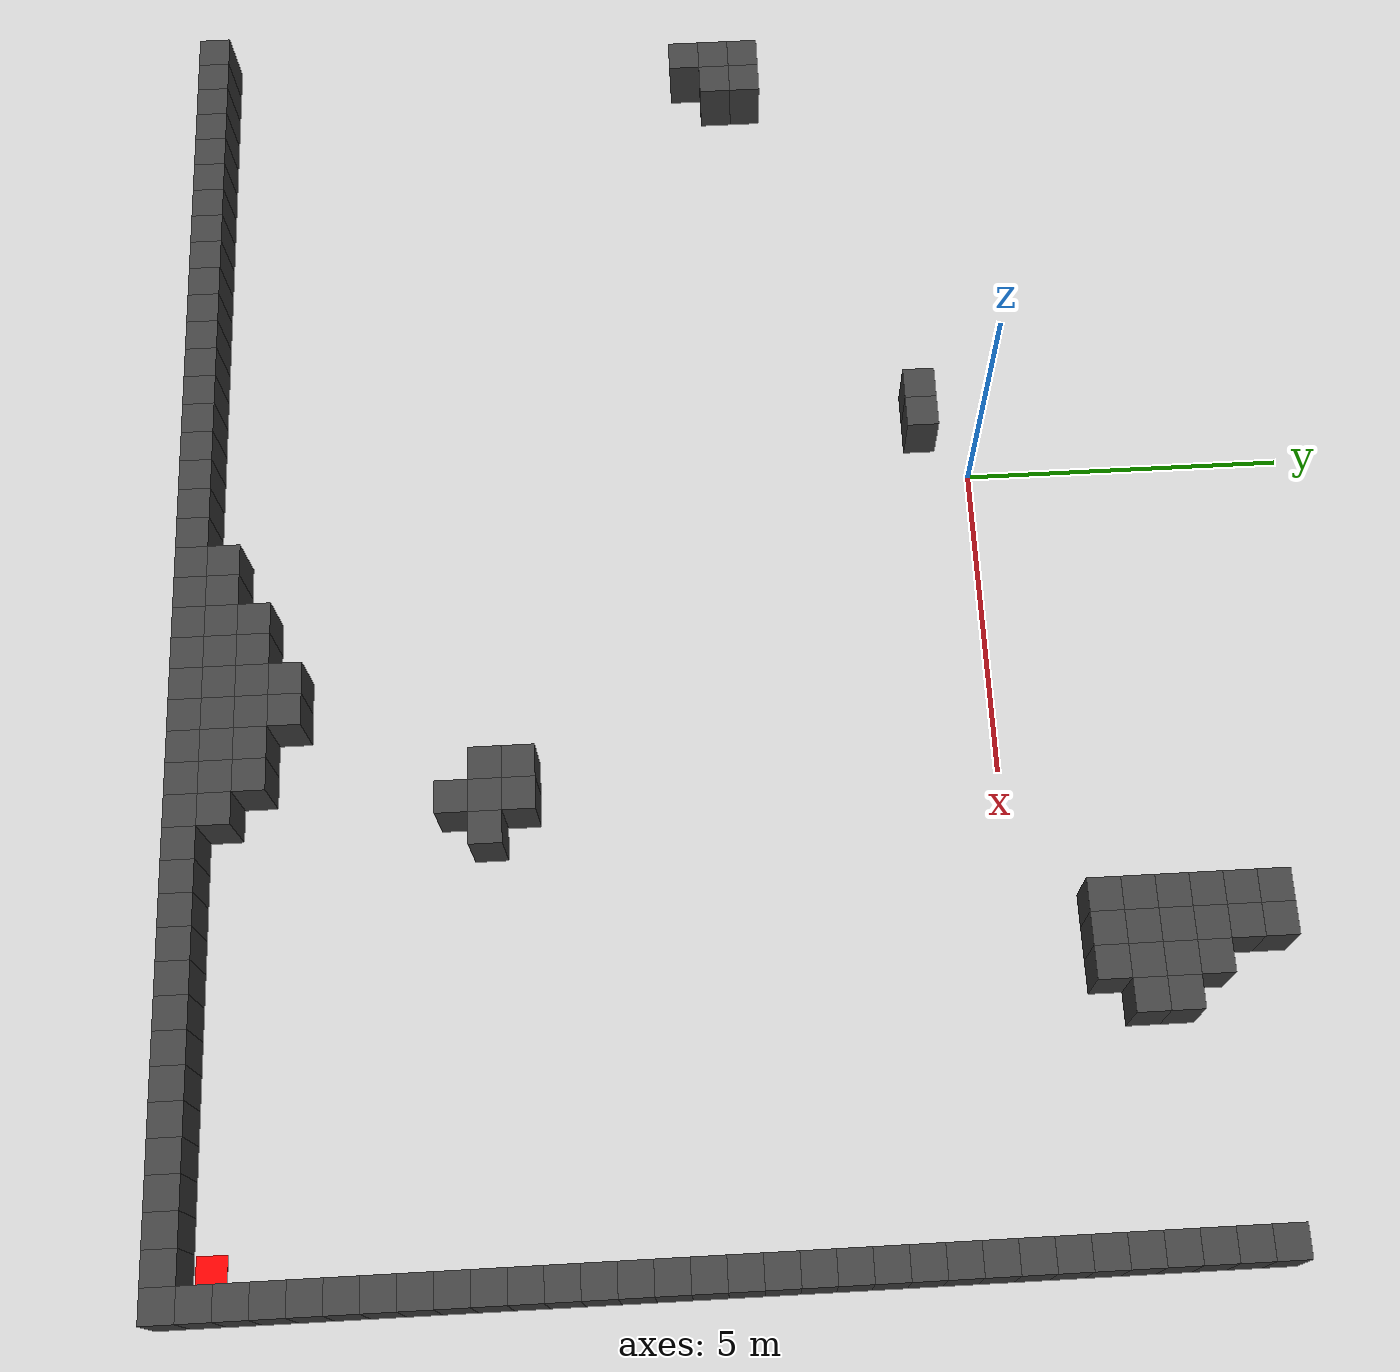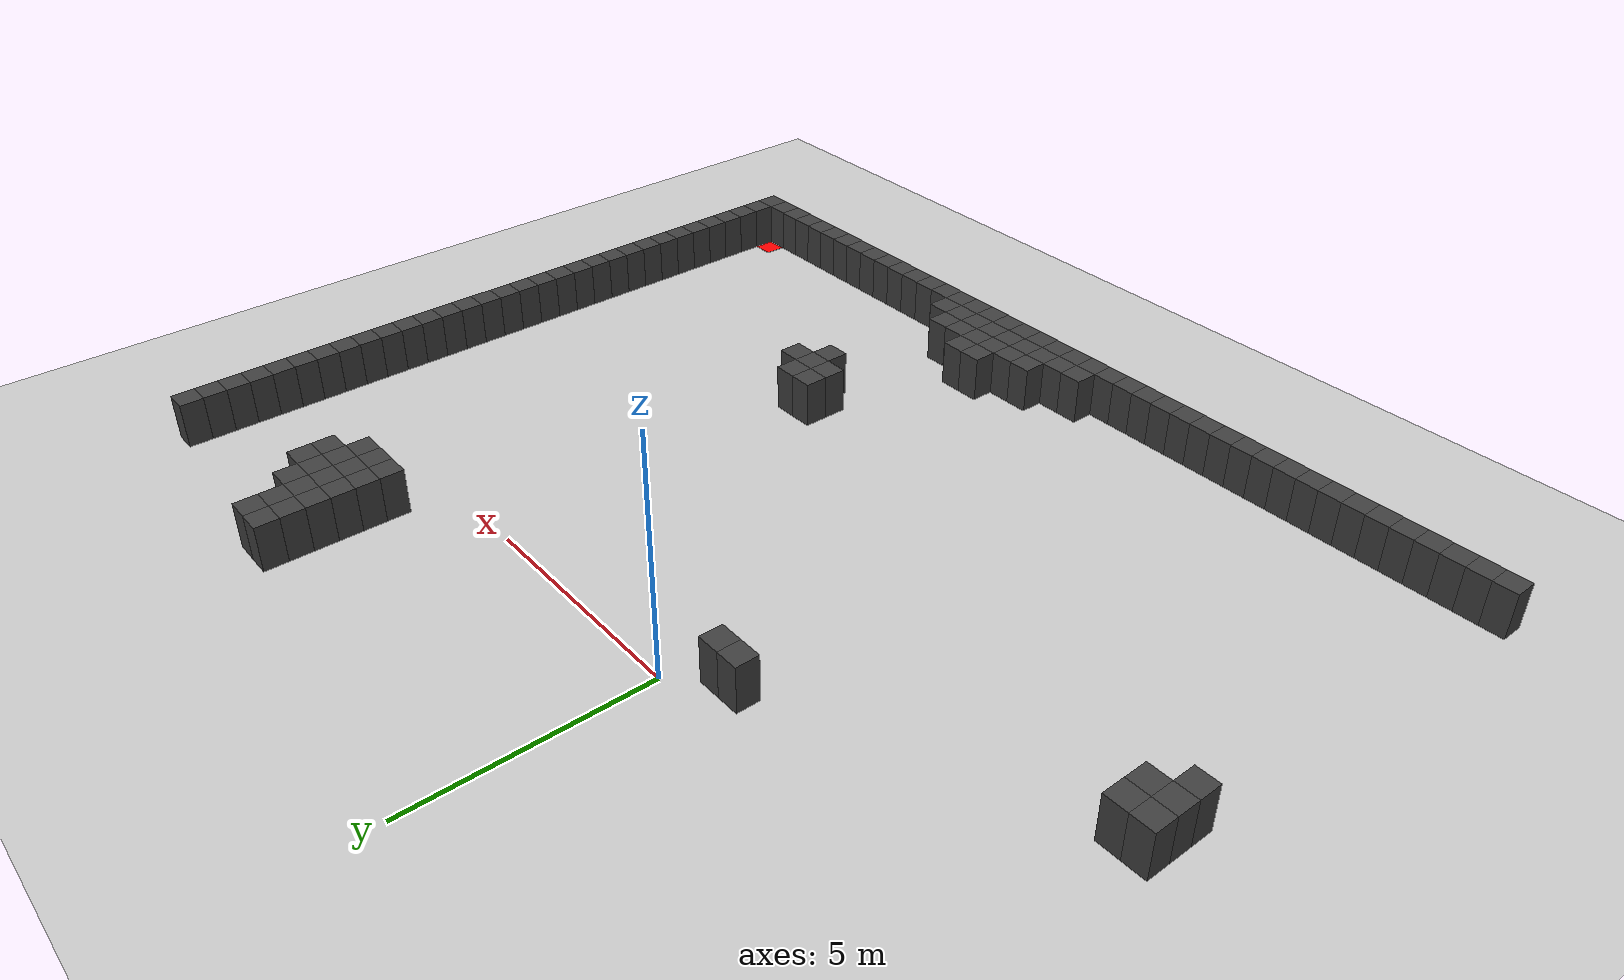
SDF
<sdf version="1.7">
 <world name="map_5009">
  <model name="ground_plane">
   <static>true</static>
   <link name="link">
    <collision name="collision">
     <geometry><plane><normal>0 0 1</normal><size>200 200</size></plane></geometry>
    </collision>
    <visual name="visual">
     <geometry><plane><normal>0 0 1</normal><size>200 200</size></plane></geometry>
     <material><ambient>0.8 0.8 0.8 1</ambient><diffuse>0.8 0.8 0.8 1</diffuse></material>
    </visual>
   </link>
  </model>
  <model name="maze_environment">
   <static>true</static>
   <link name="wall_167">
    <pose>7.250 3.750 0.500 0 0 0</pose>
    <collision name="col"><geometry><box><size>0.5 0.5 1.0</size></box></geometry></collision>
    <visual name="vis">
     <geometry><box><size>0.5 0.5 1.0</size></box></geometry>
     <material><ambient>0.15 0.15 0.15 1</ambient><diffuse>0.25 0.25 0.25 1</diffuse></material>
    </visual>
   </link>
   <link name="wall_168">
    <pose>7.750 3.750 0.500 0 0 0</pose>
    <collision name="col"><geometry><box><size>0.5 0.5 1.0</size></box></geometry></collision>
    <visual name="vis">
     <geometry><box><size>0.5 0.5 1.0</size></box></geometry>
     <material><ambient>0.15 0.15 0.15 1</ambient><diffuse>0.25 0.25 0.25 1</diffuse></material>
    </visual>
   </link>
   <link name="wall_175">
    <pose>7.250 3.250 0.500 0 0 0</pose>
    <collision name="col"><geometry><box><size>0.5 0.5 1.0</size></box></geometry></collision>
    <visual name="vis">
     <geometry><box><size>0.5 0.5 1.0</size></box></geometry>
     <material><ambient>0.15 0.15 0.15 1</ambient><diffuse>0.25 0.25 0.25 1</diffuse></material>
    </visual>
   </link>
   <link name="wall_176">
    <pose>7.750 3.250 0.500 0 0 0</pose>
    <collision name="col"><geometry><box><size>0.5 0.5 1.0</size></box></geometry></collision>
    <visual name="vis">
     <geometry><box><size>0.5 0.5 1.0</size></box></geometry>
     <material><ambient>0.15 0.15 0.15 1</ambient><diffuse>0.25 0.25 0.25 1</diffuse></material>
    </visual>
   </link>
   <link name="wall_177">
    <pose>12.250 3.250 0.500 0 0 0</pose>
    <collision name="col"><geometry><box><size>0.5 0.5 1.0</size></box></geometry></collision>
    <visual name="vis">
     <geometry><box><size>0.5 0.5 1.0</size></box></geometry>
     <material><ambient>0.15 0.15 0.15 1</ambient><diffuse>0.25 0.25 0.25 1</diffuse></material>
    </visual>
   </link>
   <link name="wall_183">
    <pose>7.250 2.750 0.500 0 0 0</pose>
    <collision name="col"><geometry><box><size>0.5 0.5 1.0</size></box></geometry></collision>
    <visual name="vis">
     <geometry><box><size>0.5 0.5 1.0</size></box></geometry>
     <material><ambient>0.15 0.15 0.15 1</ambient><diffuse>0.25 0.25 0.25 1</diffuse></material>
    </visual>
   </link>
   <link name="wall_184">
    <pose>7.750 2.750 0.500 0 0 0</pose>
    <collision name="col"><geometry><box><size>0.5 0.5 1.0</size></box></geometry></collision>
    <visual name="vis">
     <geometry><box><size>0.5 0.5 1.0</size></box></geometry>
     <material><ambient>0.15 0.15 0.15 1</ambient><diffuse>0.25 0.25 0.25 1</diffuse></material>
    </visual>
   </link>
   <link name="wall_185">
    <pose>8.250 2.750 0.500 0 0 0</pose>
    <collision name="col"><geometry><box><size>0.5 0.5 1.0</size></box></geometry></collision>
    <visual name="vis">
     <geometry><box><size>0.5 0.5 1.0</size></box></geometry>
     <material><ambient>0.15 0.15 0.15 1</ambient><diffuse>0.25 0.25 0.25 1</diffuse></material>
    </visual>
   </link>
   <link name="wall_186">
    <pose>12.250 2.750 0.500 0 0 0</pose>
    <collision name="col"><geometry><box><size>0.5 0.5 1.0</size></box></geometry></collision>
    <visual name="vis">
     <geometry><box><size>0.5 0.5 1.0</size></box></geometry>
     <material><ambient>0.15 0.15 0.15 1</ambient><diffuse>0.25 0.25 0.25 1</diffuse></material>
    </visual>
   </link>
   <link name="wall_192">
    <pose>7.250 2.250 0.500 0 0 0</pose>
    <collision name="col"><geometry><box><size>0.5 0.5 1.0</size></box></geometry></collision>
    <visual name="vis">
     <geometry><box><size>0.5 0.5 1.0</size></box></geometry>
     <material><ambient>0.15 0.15 0.15 1</ambient><diffuse>0.25 0.25 0.25 1</diffuse></material>
    </visual>
   </link>
   <link name="wall_193">
    <pose>7.750 2.250 0.500 0 0 0</pose>
    <collision name="col"><geometry><box><size>0.5 0.5 1.0</size></box></geometry></collision>
    <visual name="vis">
     <geometry><box><size>0.5 0.5 1.0</size></box></geometry>
     <material><ambient>0.15 0.15 0.15 1</ambient><diffuse>0.25 0.25 0.25 1</diffuse></material>
    </visual>
   </link>
   <link name="wall_194">
    <pose>8.250 2.250 0.500 0 0 0</pose>
    <collision name="col"><geometry><box><size>0.5 0.5 1.0</size></box></geometry></collision>
    <visual name="vis">
     <geometry><box><size>0.5 0.5 1.0</size></box></geometry>
     <material><ambient>0.15 0.15 0.15 1</ambient><diffuse>0.25 0.25 0.25 1</diffuse></material>
    </visual>
   </link>
   <link name="wall_195">
    <pose>8.750 2.250 0.500 0 0 0</pose>
    <collision name="col"><geometry><box><size>0.5 0.5 1.0</size></box></geometry></collision>
    <visual name="vis">
     <geometry><box><size>0.5 0.5 1.0</size></box></geometry>
     <material><ambient>0.15 0.15 0.15 1</ambient><diffuse>0.25 0.25 0.25 1</diffuse></material>
    </visual>
   </link>
   <link name="wall_196">
    <pose>12.250 2.250 0.500 0 0 0</pose>
    <collision name="col"><geometry><box><size>0.5 0.5 1.0</size></box></geometry></collision>
    <visual name="vis">
     <geometry><box><size>0.5 0.5 1.0</size></box></geometry>
     <material><ambient>0.15 0.15 0.15 1</ambient><diffuse>0.25 0.25 0.25 1</diffuse></material>
    </visual>
   </link>
   <link name="wall_201">
    <pose>7.250 1.750 0.500 0 0 0</pose>
    <collision name="col"><geometry><box><size>0.5 0.5 1.0</size></box></geometry></collision>
    <visual name="vis">
     <geometry><box><size>0.5 0.5 1.0</size></box></geometry>
     <material><ambient>0.15 0.15 0.15 1</ambient><diffuse>0.25 0.25 0.25 1</diffuse></material>
    </visual>
   </link>
   <link name="wall_202">
    <pose>7.750 1.750 0.500 0 0 0</pose>
    <collision name="col"><geometry><box><size>0.5 0.5 1.0</size></box></geometry></collision>
    <visual name="vis">
     <geometry><box><size>0.5 0.5 1.0</size></box></geometry>
     <material><ambient>0.15 0.15 0.15 1</ambient><diffuse>0.25 0.25 0.25 1</diffuse></material>
    </visual>
   </link>
   <link name="wall_203">
    <pose>8.250 1.750 0.500 0 0 0</pose>
    <collision name="col"><geometry><box><size>0.5 0.5 1.0</size></box></geometry></collision>
    <visual name="vis">
     <geometry><box><size>0.5 0.5 1.0</size></box></geometry>
     <material><ambient>0.15 0.15 0.15 1</ambient><diffuse>0.25 0.25 0.25 1</diffuse></material>
    </visual>
   </link>
   <link name="wall_204">
    <pose>8.750 1.750 0.500 0 0 0</pose>
    <collision name="col"><geometry><box><size>0.5 0.5 1.0</size></box></geometry></collision>
    <visual name="vis">
     <geometry><box><size>0.5 0.5 1.0</size></box></geometry>
     <material><ambient>0.15 0.15 0.15 1</ambient><diffuse>0.25 0.25 0.25 1</diffuse></material>
    </visual>
   </link>
   <link name="wall_205">
    <pose>12.250 1.750 0.500 0 0 0</pose>
    <collision name="col"><geometry><box><size>0.5 0.5 1.0</size></box></geometry></collision>
    <visual name="vis">
     <geometry><box><size>0.5 0.5 1.0</size></box></geometry>
     <material><ambient>0.15 0.15 0.15 1</ambient><diffuse>0.25 0.25 0.25 1</diffuse></material>
    </visual>
   </link>
   <link name="wall_208">
    <pose>7.250 1.250 0.500 0 0 0</pose>
    <collision name="col"><geometry><box><size>0.5 0.5 1.0</size></box></geometry></collision>
    <visual name="vis">
     <geometry><box><size>0.5 0.5 1.0</size></box></geometry>
     <material><ambient>0.15 0.15 0.15 1</ambient><diffuse>0.25 0.25 0.25 1</diffuse></material>
    </visual>
   </link>
   <link name="wall_209">
    <pose>7.750 1.250 0.500 0 0 0</pose>
    <collision name="col"><geometry><box><size>0.5 0.5 1.0</size></box></geometry></collision>
    <visual name="vis">
     <geometry><box><size>0.5 0.5 1.0</size></box></geometry>
     <material><ambient>0.15 0.15 0.15 1</ambient><diffuse>0.25 0.25 0.25 1</diffuse></material>
    </visual>
   </link>
   <link name="wall_210">
    <pose>8.250 1.250 0.500 0 0 0</pose>
    <collision name="col"><geometry><box><size>0.5 0.5 1.0</size></box></geometry></collision>
    <visual name="vis">
     <geometry><box><size>0.5 0.5 1.0</size></box></geometry>
     <material><ambient>0.15 0.15 0.15 1</ambient><diffuse>0.25 0.25 0.25 1</diffuse></material>
    </visual>
   </link>
   <link name="wall_211">
    <pose>12.250 1.250 0.500 0 0 0</pose>
    <collision name="col"><geometry><box><size>0.5 0.5 1.0</size></box></geometry></collision>
    <visual name="vis">
     <geometry><box><size>0.5 0.5 1.0</size></box></geometry>
     <material><ambient>0.15 0.15 0.15 1</ambient><diffuse>0.25 0.25 0.25 1</diffuse></material>
    </visual>
   </link>
   <link name="wall_213">
    <pose>12.250 0.750 0.500 0 0 0</pose>
    <collision name="col"><geometry><box><size>0.5 0.5 1.0</size></box></geometry></collision>
    <visual name="vis">
     <geometry><box><size>0.5 0.5 1.0</size></box></geometry>
     <material><ambient>0.15 0.15 0.15 1</ambient><diffuse>0.25 0.25 0.25 1</diffuse></material>
    </visual>
   </link>
   <link name="wall_216">
    <pose>12.250 0.250 0.500 0 0 0</pose>
    <collision name="col"><geometry><box><size>0.5 0.5 1.0</size></box></geometry></collision>
    <visual name="vis">
     <geometry><box><size>0.5 0.5 1.0</size></box></geometry>
     <material><ambient>0.15 0.15 0.15 1</ambient><diffuse>0.25 0.25 0.25 1</diffuse></material>
    </visual>
   </link>
   <link name="wall_220">
    <pose>12.250 -0.250 0.500 0 0 0</pose>
    <collision name="col"><geometry><box><size>0.5 0.5 1.0</size></box></geometry></collision>
    <visual name="vis">
     <geometry><box><size>0.5 0.5 1.0</size></box></geometry>
     <material><ambient>0.15 0.15 0.15 1</ambient><diffuse>0.25 0.25 0.25 1</diffuse></material>
    </visual>
   </link>
   <link name="wall_224">
    <pose>-1.250 -0.750 0.500 0 0 0</pose>
    <collision name="col"><geometry><box><size>0.5 0.5 1.0</size></box></geometry></collision>
    <visual name="vis">
     <geometry><box><size>0.5 0.5 1.0</size></box></geometry>
     <material><ambient>0.15 0.15 0.15 1</ambient><diffuse>0.25 0.25 0.25 1</diffuse></material>
    </visual>
   </link>
   <link name="wall_225">
    <pose>-0.750 -0.750 0.500 0 0 0</pose>
    <collision name="col"><geometry><box><size>0.5 0.5 1.0</size></box></geometry></collision>
    <visual name="vis">
     <geometry><box><size>0.5 0.5 1.0</size></box></geometry>
     <material><ambient>0.15 0.15 0.15 1</ambient><diffuse>0.25 0.25 0.25 1</diffuse></material>
    </visual>
   </link>
   <link name="wall_226">
    <pose>12.250 -0.750 0.500 0 0 0</pose>
    <collision name="col"><geometry><box><size>0.5 0.5 1.0</size></box></geometry></collision>
    <visual name="vis">
     <geometry><box><size>0.5 0.5 1.0</size></box></geometry>
     <material><ambient>0.15 0.15 0.15 1</ambient><diffuse>0.25 0.25 0.25 1</diffuse></material>
    </visual>
   </link>
   <link name="wall_230">
    <pose>12.250 -1.250 0.500 0 0 0</pose>
    <collision name="col"><geometry><box><size>0.5 0.5 1.0</size></box></geometry></collision>
    <visual name="vis">
     <geometry><box><size>0.5 0.5 1.0</size></box></geometry>
     <material><ambient>0.15 0.15 0.15 1</ambient><diffuse>0.25 0.25 0.25 1</diffuse></material>
    </visual>
   </link>
   <link name="wall_233">
    <pose>12.250 -1.750 0.500 0 0 0</pose>
    <collision name="col"><geometry><box><size>0.5 0.5 1.0</size></box></geometry></collision>
    <visual name="vis">
     <geometry><box><size>0.5 0.5 1.0</size></box></geometry>
     <material><ambient>0.15 0.15 0.15 1</ambient><diffuse>0.25 0.25 0.25 1</diffuse></material>
    </visual>
   </link>
   <link name="wall_235">
    <pose>12.250 -2.250 0.500 0 0 0</pose>
    <collision name="col"><geometry><box><size>0.5 0.5 1.0</size></box></geometry></collision>
    <visual name="vis">
     <geometry><box><size>0.5 0.5 1.0</size></box></geometry>
     <material><ambient>0.15 0.15 0.15 1</ambient><diffuse>0.25 0.25 0.25 1</diffuse></material>
    </visual>
   </link>
   <link name="wall_238">
    <pose>12.250 -2.750 0.500 0 0 0</pose>
    <collision name="col"><geometry><box><size>0.5 0.5 1.0</size></box></geometry></collision>
    <visual name="vis">
     <geometry><box><size>0.5 0.5 1.0</size></box></geometry>
     <material><ambient>0.15 0.15 0.15 1</ambient><diffuse>0.25 0.25 0.25 1</diffuse></material>
    </visual>
   </link>
   <link name="wall_243">
    <pose>-7.750 -3.250 0.500 0 0 0</pose>
    <collision name="col"><geometry><box><size>0.5 0.5 1.0</size></box></geometry></collision>
    <visual name="vis">
     <geometry><box><size>0.5 0.5 1.0</size></box></geometry>
     <material><ambient>0.15 0.15 0.15 1</ambient><diffuse>0.25 0.25 0.25 1</diffuse></material>
    </visual>
   </link>
   <link name="wall_244">
    <pose>-7.250 -3.250 0.500 0 0 0</pose>
    <collision name="col"><geometry><box><size>0.5 0.5 1.0</size></box></geometry></collision>
    <visual name="vis">
     <geometry><box><size>0.5 0.5 1.0</size></box></geometry>
     <material><ambient>0.15 0.15 0.15 1</ambient><diffuse>0.25 0.25 0.25 1</diffuse></material>
    </visual>
   </link>
   <link name="wall_245">
    <pose>12.250 -3.250 0.500 0 0 0</pose>
    <collision name="col"><geometry><box><size>0.5 0.5 1.0</size></box></geometry></collision>
    <visual name="vis">
     <geometry><box><size>0.5 0.5 1.0</size></box></geometry>
     <material><ambient>0.15 0.15 0.15 1</ambient><diffuse>0.25 0.25 0.25 1</diffuse></material>
    </visual>
   </link>
   <link name="wall_249">
    <pose>-7.750 -3.750 0.500 0 0 0</pose>
    <collision name="col"><geometry><box><size>0.5 0.5 1.0</size></box></geometry></collision>
    <visual name="vis">
     <geometry><box><size>0.5 0.5 1.0</size></box></geometry>
     <material><ambient>0.15 0.15 0.15 1</ambient><diffuse>0.25 0.25 0.25 1</diffuse></material>
    </visual>
   </link>
   <link name="wall_250">
    <pose>-7.250 -3.750 0.500 0 0 0</pose>
    <collision name="col"><geometry><box><size>0.5 0.5 1.0</size></box></geometry></collision>
    <visual name="vis">
     <geometry><box><size>0.5 0.5 1.0</size></box></geometry>
     <material><ambient>0.15 0.15 0.15 1</ambient><diffuse>0.25 0.25 0.25 1</diffuse></material>
    </visual>
   </link>
   <link name="wall_251">
    <pose>12.250 -3.750 0.500 0 0 0</pose>
    <collision name="col"><geometry><box><size>0.5 0.5 1.0</size></box></geometry></collision>
    <visual name="vis">
     <geometry><box><size>0.5 0.5 1.0</size></box></geometry>
     <material><ambient>0.15 0.15 0.15 1</ambient><diffuse>0.25 0.25 0.25 1</diffuse></material>
    </visual>
   </link>
   <link name="wall_254">
    <pose>-7.750 -4.250 0.500 0 0 0</pose>
    <collision name="col"><geometry><box><size>0.5 0.5 1.0</size></box></geometry></collision>
    <visual name="vis">
     <geometry><box><size>0.5 0.5 1.0</size></box></geometry>
     <material><ambient>0.15 0.15 0.15 1</ambient><diffuse>0.25 0.25 0.25 1</diffuse></material>
    </visual>
   </link>
   <link name="wall_255">
    <pose>12.250 -4.250 0.500 0 0 0</pose>
    <collision name="col"><geometry><box><size>0.5 0.5 1.0</size></box></geometry></collision>
    <visual name="vis">
     <geometry><box><size>0.5 0.5 1.0</size></box></geometry>
     <material><ambient>0.15 0.15 0.15 1</ambient><diffuse>0.25 0.25 0.25 1</diffuse></material>
    </visual>
   </link>
   <link name="wall_257">
    <pose>12.250 -4.750 0.500 0 0 0</pose>
    <collision name="col"><geometry><box><size>0.5 0.5 1.0</size></box></geometry></collision>
    <visual name="vis">
     <geometry><box><size>0.5 0.5 1.0</size></box></geometry>
     <material><ambient>0.15 0.15 0.15 1</ambient><diffuse>0.25 0.25 0.25 1</diffuse></material>
    </visual>
   </link>
   <link name="wall_260">
    <pose>12.250 -5.250 0.500 0 0 0</pose>
    <collision name="col"><geometry><box><size>0.5 0.5 1.0</size></box></geometry></collision>
    <visual name="vis">
     <geometry><box><size>0.5 0.5 1.0</size></box></geometry>
     <material><ambient>0.15 0.15 0.15 1</ambient><diffuse>0.25 0.25 0.25 1</diffuse></material>
    </visual>
   </link>
   <link name="wall_263">
    <pose>12.250 -5.750 0.500 0 0 0</pose>
    <collision name="col"><geometry><box><size>0.5 0.5 1.0</size></box></geometry></collision>
    <visual name="vis">
     <geometry><box><size>0.5 0.5 1.0</size></box></geometry>
     <material><ambient>0.15 0.15 0.15 1</ambient><diffuse>0.25 0.25 0.25 1</diffuse></material>
    </visual>
   </link>
   <link name="wall_266">
    <pose>12.250 -6.250 0.500 0 0 0</pose>
    <collision name="col"><geometry><box><size>0.5 0.5 1.0</size></box></geometry></collision>
    <visual name="vis">
     <geometry><box><size>0.5 0.5 1.0</size></box></geometry>
     <material><ambient>0.15 0.15 0.15 1</ambient><diffuse>0.25 0.25 0.25 1</diffuse></material>
    </visual>
   </link>
   <link name="wall_268">
    <pose>12.250 -6.750 0.500 0 0 0</pose>
    <collision name="col"><geometry><box><size>0.5 0.5 1.0</size></box></geometry></collision>
    <visual name="vis">
     <geometry><box><size>0.5 0.5 1.0</size></box></geometry>
     <material><ambient>0.15 0.15 0.15 1</ambient><diffuse>0.25 0.25 0.25 1</diffuse></material>
    </visual>
   </link>
   <link name="wall_270">
    <pose>4.750 -7.250 0.500 0 0 0</pose>
    <collision name="col"><geometry><box><size>0.5 0.5 1.0</size></box></geometry></collision>
    <visual name="vis">
     <geometry><box><size>0.5 0.5 1.0</size></box></geometry>
     <material><ambient>0.15 0.15 0.15 1</ambient><diffuse>0.25 0.25 0.25 1</diffuse></material>
    </visual>
   </link>
   <link name="wall_271">
    <pose>5.250 -7.250 0.500 0 0 0</pose>
    <collision name="col"><geometry><box><size>0.5 0.5 1.0</size></box></geometry></collision>
    <visual name="vis">
     <geometry><box><size>0.5 0.5 1.0</size></box></geometry>
     <material><ambient>0.15 0.15 0.15 1</ambient><diffuse>0.25 0.25 0.25 1</diffuse></material>
    </visual>
   </link>
   <link name="wall_272">
    <pose>12.250 -7.250 0.500 0 0 0</pose>
    <collision name="col"><geometry><box><size>0.5 0.5 1.0</size></box></geometry></collision>
    <visual name="vis">
     <geometry><box><size>0.5 0.5 1.0</size></box></geometry>
     <material><ambient>0.15 0.15 0.15 1</ambient><diffuse>0.25 0.25 0.25 1</diffuse></material>
    </visual>
   </link>
   <link name="wall_274">
    <pose>4.750 -7.750 0.500 0 0 0</pose>
    <collision name="col"><geometry><box><size>0.5 0.5 1.0</size></box></geometry></collision>
    <visual name="vis">
     <geometry><box><size>0.5 0.5 1.0</size></box></geometry>
     <material><ambient>0.15 0.15 0.15 1</ambient><diffuse>0.25 0.25 0.25 1</diffuse></material>
    </visual>
   </link>
   <link name="wall_275">
    <pose>5.250 -7.750 0.500 0 0 0</pose>
    <collision name="col"><geometry><box><size>0.5 0.5 1.0</size></box></geometry></collision>
    <visual name="vis">
     <geometry><box><size>0.5 0.5 1.0</size></box></geometry>
     <material><ambient>0.15 0.15 0.15 1</ambient><diffuse>0.25 0.25 0.25 1</diffuse></material>
    </visual>
   </link>
   <link name="wall_276">
    <pose>5.750 -7.750 0.500 0 0 0</pose>
    <collision name="col"><geometry><box><size>0.5 0.5 1.0</size></box></geometry></collision>
    <visual name="vis">
     <geometry><box><size>0.5 0.5 1.0</size></box></geometry>
     <material><ambient>0.15 0.15 0.15 1</ambient><diffuse>0.25 0.25 0.25 1</diffuse></material>
    </visual>
   </link>
   <link name="wall_277">
    <pose>12.250 -7.750 0.500 0 0 0</pose>
    <collision name="col"><geometry><box><size>0.5 0.5 1.0</size></box></geometry></collision>
    <visual name="vis">
     <geometry><box><size>0.5 0.5 1.0</size></box></geometry>
     <material><ambient>0.15 0.15 0.15 1</ambient><diffuse>0.25 0.25 0.25 1</diffuse></material>
    </visual>
   </link>
   <link name="wall_279">
    <pose>5.250 -8.250 0.500 0 0 0</pose>
    <collision name="col"><geometry><box><size>0.5 0.5 1.0</size></box></geometry></collision>
    <visual name="vis">
     <geometry><box><size>0.5 0.5 1.0</size></box></geometry>
     <material><ambient>0.15 0.15 0.15 1</ambient><diffuse>0.25 0.25 0.25 1</diffuse></material>
    </visual>
   </link>
   <link name="wall_280">
    <pose>12.250 -8.250 0.500 0 0 0</pose>
    <collision name="col"><geometry><box><size>0.5 0.5 1.0</size></box></geometry></collision>
    <visual name="vis">
     <geometry><box><size>0.5 0.5 1.0</size></box></geometry>
     <material><ambient>0.15 0.15 0.15 1</ambient><diffuse>0.25 0.25 0.25 1</diffuse></material>
    </visual>
   </link>
   <link name="wall_282">
    <pose>12.250 -8.750 0.500 0 0 0</pose>
    <collision name="col"><geometry><box><size>0.5 0.5 1.0</size></box></geometry></collision>
    <visual name="vis">
     <geometry><box><size>0.5 0.5 1.0</size></box></geometry>
     <material><ambient>0.15 0.15 0.15 1</ambient><diffuse>0.25 0.25 0.25 1</diffuse></material>
    </visual>
   </link>
   <link name="wall_284">
    <pose>12.250 -9.250 0.500 0 0 0</pose>
    <collision name="col"><geometry><box><size>0.5 0.5 1.0</size></box></geometry></collision>
    <visual name="vis">
     <geometry><box><size>0.5 0.5 1.0</size></box></geometry>
     <material><ambient>0.15 0.15 0.15 1</ambient><diffuse>0.25 0.25 0.25 1</diffuse></material>
    </visual>
   </link>
   <link name="wall_286">
    <pose>12.250 -9.750 0.500 0 0 0</pose>
    <collision name="col"><geometry><box><size>0.5 0.5 1.0</size></box></geometry></collision>
    <visual name="vis">
     <geometry><box><size>0.5 0.5 1.0</size></box></geometry>
     <material><ambient>0.15 0.15 0.15 1</ambient><diffuse>0.25 0.25 0.25 1</diffuse></material>
    </visual>
   </link>
   <link name="wall_288">
    <pose>12.250 -10.250 0.500 0 0 0</pose>
    <collision name="col"><geometry><box><size>0.5 0.5 1.0</size></box></geometry></collision>
    <visual name="vis">
     <geometry><box><size>0.5 0.5 1.0</size></box></geometry>
     <material><ambient>0.15 0.15 0.15 1</ambient><diffuse>0.25 0.25 0.25 1</diffuse></material>
    </visual>
   </link>
   <link name="wall_290">
    <pose>3.250 -10.750 0.500 0 0 0</pose>
    <collision name="col"><geometry><box><size>0.5 0.5 1.0</size></box></geometry></collision>
    <visual name="vis">
     <geometry><box><size>0.5 0.5 1.0</size></box></geometry>
     <material><ambient>0.15 0.15 0.15 1</ambient><diffuse>0.25 0.25 0.25 1</diffuse></material>
    </visual>
   </link>
   <link name="wall_291">
    <pose>3.750 -10.750 0.500 0 0 0</pose>
    <collision name="col"><geometry><box><size>0.5 0.5 1.0</size></box></geometry></collision>
    <visual name="vis">
     <geometry><box><size>0.5 0.5 1.0</size></box></geometry>
     <material><ambient>0.15 0.15 0.15 1</ambient><diffuse>0.25 0.25 0.25 1</diffuse></material>
    </visual>
   </link>
   <link name="wall_292">
    <pose>12.250 -10.750 0.500 0 0 0</pose>
    <collision name="col"><geometry><box><size>0.5 0.5 1.0</size></box></geometry></collision>
    <visual name="vis">
     <geometry><box><size>0.5 0.5 1.0</size></box></geometry>
     <material><ambient>0.15 0.15 0.15 1</ambient><diffuse>0.25 0.25 0.25 1</diffuse></material>
    </visual>
   </link>
   <link name="wall_294">
    <pose>2.250 -11.250 0.500 0 0 0</pose>
    <collision name="col"><geometry><box><size>0.5 0.5 1.0</size></box></geometry></collision>
    <visual name="vis">
     <geometry><box><size>0.5 0.5 1.0</size></box></geometry>
     <material><ambient>0.15 0.15 0.15 1</ambient><diffuse>0.25 0.25 0.25 1</diffuse></material>
    </visual>
   </link>
   <link name="wall_295">
    <pose>2.750 -11.250 0.500 0 0 0</pose>
    <collision name="col"><geometry><box><size>0.5 0.5 1.0</size></box></geometry></collision>
    <visual name="vis">
     <geometry><box><size>0.5 0.5 1.0</size></box></geometry>
     <material><ambient>0.15 0.15 0.15 1</ambient><diffuse>0.25 0.25 0.25 1</diffuse></material>
    </visual>
   </link>
   <link name="wall_296">
    <pose>3.250 -11.250 0.500 0 0 0</pose>
    <collision name="col"><geometry><box><size>0.5 0.5 1.0</size></box></geometry></collision>
    <visual name="vis">
     <geometry><box><size>0.5 0.5 1.0</size></box></geometry>
     <material><ambient>0.15 0.15 0.15 1</ambient><diffuse>0.25 0.25 0.25 1</diffuse></material>
    </visual>
   </link>
   <link name="wall_297">
    <pose>3.750 -11.250 0.500 0 0 0</pose>
    <collision name="col"><geometry><box><size>0.5 0.5 1.0</size></box></geometry></collision>
    <visual name="vis">
     <geometry><box><size>0.5 0.5 1.0</size></box></geometry>
     <material><ambient>0.15 0.15 0.15 1</ambient><diffuse>0.25 0.25 0.25 1</diffuse></material>
    </visual>
   </link>
   <link name="wall_298">
    <pose>4.250 -11.250 0.500 0 0 0</pose>
    <collision name="col"><geometry><box><size>0.5 0.5 1.0</size></box></geometry></collision>
    <visual name="vis">
     <geometry><box><size>0.5 0.5 1.0</size></box></geometry>
     <material><ambient>0.15 0.15 0.15 1</ambient><diffuse>0.25 0.25 0.25 1</diffuse></material>
    </visual>
   </link>
   <link name="wall_299">
    <pose>4.750 -11.250 0.500 0 0 0</pose>
    <collision name="col"><geometry><box><size>0.5 0.5 1.0</size></box></geometry></collision>
    <visual name="vis">
     <geometry><box><size>0.5 0.5 1.0</size></box></geometry>
     <material><ambient>0.15 0.15 0.15 1</ambient><diffuse>0.25 0.25 0.25 1</diffuse></material>
    </visual>
   </link>
   <link name="wall_300">
    <pose>12.250 -11.250 0.500 0 0 0</pose>
    <collision name="col"><geometry><box><size>0.5 0.5 1.0</size></box></geometry></collision>
    <visual name="vis">
     <geometry><box><size>0.5 0.5 1.0</size></box></geometry>
     <material><ambient>0.15 0.15 0.15 1</ambient><diffuse>0.25 0.25 0.25 1</diffuse></material>
    </visual>
   </link>
   <link name="wall_304">
    <pose>1.250 -11.750 0.500 0 0 0</pose>
    <collision name="col"><geometry><box><size>0.5 0.5 1.0</size></box></geometry></collision>
    <visual name="vis">
     <geometry><box><size>0.5 0.5 1.0</size></box></geometry>
     <material><ambient>0.15 0.15 0.15 1</ambient><diffuse>0.25 0.25 0.25 1</diffuse></material>
    </visual>
   </link>
   <link name="wall_305">
    <pose>1.750 -11.750 0.500 0 0 0</pose>
    <collision name="col"><geometry><box><size>0.5 0.5 1.0</size></box></geometry></collision>
    <visual name="vis">
     <geometry><box><size>0.5 0.5 1.0</size></box></geometry>
     <material><ambient>0.15 0.15 0.15 1</ambient><diffuse>0.25 0.25 0.25 1</diffuse></material>
    </visual>
   </link>
   <link name="wall_306">
    <pose>2.250 -11.750 0.500 0 0 0</pose>
    <collision name="col"><geometry><box><size>0.5 0.5 1.0</size></box></geometry></collision>
    <visual name="vis">
     <geometry><box><size>0.5 0.5 1.0</size></box></geometry>
     <material><ambient>0.15 0.15 0.15 1</ambient><diffuse>0.25 0.25 0.25 1</diffuse></material>
    </visual>
   </link>
   <link name="wall_307">
    <pose>2.750 -11.750 0.500 0 0 0</pose>
    <collision name="col"><geometry><box><size>0.5 0.5 1.0</size></box></geometry></collision>
    <visual name="vis">
     <geometry><box><size>0.5 0.5 1.0</size></box></geometry>
     <material><ambient>0.15 0.15 0.15 1</ambient><diffuse>0.25 0.25 0.25 1</diffuse></material>
    </visual>
   </link>
   <link name="wall_308">
    <pose>3.250 -11.750 0.500 0 0 0</pose>
    <collision name="col"><geometry><box><size>0.5 0.5 1.0</size></box></geometry></collision>
    <visual name="vis">
     <geometry><box><size>0.5 0.5 1.0</size></box></geometry>
     <material><ambient>0.15 0.15 0.15 1</ambient><diffuse>0.25 0.25 0.25 1</diffuse></material>
    </visual>
   </link>
   <link name="wall_309">
    <pose>3.750 -11.750 0.500 0 0 0</pose>
    <collision name="col"><geometry><box><size>0.5 0.5 1.0</size></box></geometry></collision>
    <visual name="vis">
     <geometry><box><size>0.5 0.5 1.0</size></box></geometry>
     <material><ambient>0.15 0.15 0.15 1</ambient><diffuse>0.25 0.25 0.25 1</diffuse></material>
    </visual>
   </link>
   <link name="wall_310">
    <pose>4.250 -11.750 0.500 0 0 0</pose>
    <collision name="col"><geometry><box><size>0.5 0.5 1.0</size></box></geometry></collision>
    <visual name="vis">
     <geometry><box><size>0.5 0.5 1.0</size></box></geometry>
     <material><ambient>0.15 0.15 0.15 1</ambient><diffuse>0.25 0.25 0.25 1</diffuse></material>
    </visual>
   </link>
   <link name="wall_311">
    <pose>4.750 -11.750 0.500 0 0 0</pose>
    <collision name="col"><geometry><box><size>0.5 0.5 1.0</size></box></geometry></collision>
    <visual name="vis">
     <geometry><box><size>0.5 0.5 1.0</size></box></geometry>
     <material><ambient>0.15 0.15 0.15 1</ambient><diffuse>0.25 0.25 0.25 1</diffuse></material>
    </visual>
   </link>
   <link name="wall_312">
    <pose>5.250 -11.750 0.500 0 0 0</pose>
    <collision name="col"><geometry><box><size>0.5 0.5 1.0</size></box></geometry></collision>
    <visual name="vis">
     <geometry><box><size>0.5 0.5 1.0</size></box></geometry>
     <material><ambient>0.15 0.15 0.15 1</ambient><diffuse>0.25 0.25 0.25 1</diffuse></material>
    </visual>
   </link>
   <link name="wall_313">
    <pose>12.250 -11.750 0.500 0 0 0</pose>
    <collision name="col"><geometry><box><size>0.5 0.5 1.0</size></box></geometry></collision>
    <visual name="vis">
     <geometry><box><size>0.5 0.5 1.0</size></box></geometry>
     <material><ambient>0.15 0.15 0.15 1</ambient><diffuse>0.25 0.25 0.25 1</diffuse></material>
    </visual>
   </link>
   <link name="wall_322">
    <pose>-8.250 -12.250 0.500 0 0 0</pose>
    <collision name="col"><geometry><box><size>0.5 0.5 1.0</size></box></geometry></collision>
    <visual name="vis">
     <geometry><box><size>0.5 0.5 1.0</size></box></geometry>
     <material><ambient>0.15 0.15 0.15 1</ambient><diffuse>0.25 0.25 0.25 1</diffuse></material>
    </visual>
   </link>
   <link name="wall_323">
    <pose>-7.750 -12.250 0.500 0 0 0</pose>
    <collision name="col"><geometry><box><size>0.5 0.5 1.0</size></box></geometry></collision>
    <visual name="vis">
     <geometry><box><size>0.5 0.5 1.0</size></box></geometry>
     <material><ambient>0.15 0.15 0.15 1</ambient><diffuse>0.25 0.25 0.25 1</diffuse></material>
    </visual>
   </link>
   <link name="wall_324">
    <pose>-7.250 -12.250 0.500 0 0 0</pose>
    <collision name="col"><geometry><box><size>0.5 0.5 1.0</size></box></geometry></collision>
    <visual name="vis">
     <geometry><box><size>0.5 0.5 1.0</size></box></geometry>
     <material><ambient>0.15 0.15 0.15 1</ambient><diffuse>0.25 0.25 0.25 1</diffuse></material>
    </visual>
   </link>
   <link name="wall_325">
    <pose>-6.750 -12.250 0.500 0 0 0</pose>
    <collision name="col"><geometry><box><size>0.5 0.5 1.0</size></box></geometry></collision>
    <visual name="vis">
     <geometry><box><size>0.5 0.5 1.0</size></box></geometry>
     <material><ambient>0.15 0.15 0.15 1</ambient><diffuse>0.25 0.25 0.25 1</diffuse></material>
    </visual>
   </link>
   <link name="wall_326">
    <pose>-6.250 -12.250 0.500 0 0 0</pose>
    <collision name="col"><geometry><box><size>0.5 0.5 1.0</size></box></geometry></collision>
    <visual name="vis">
     <geometry><box><size>0.5 0.5 1.0</size></box></geometry>
     <material><ambient>0.15 0.15 0.15 1</ambient><diffuse>0.25 0.25 0.25 1</diffuse></material>
    </visual>
   </link>
   <link name="wall_327">
    <pose>-5.750 -12.250 0.500 0 0 0</pose>
    <collision name="col"><geometry><box><size>0.5 0.5 1.0</size></box></geometry></collision>
    <visual name="vis">
     <geometry><box><size>0.5 0.5 1.0</size></box></geometry>
     <material><ambient>0.15 0.15 0.15 1</ambient><diffuse>0.25 0.25 0.25 1</diffuse></material>
    </visual>
   </link>
   <link name="wall_328">
    <pose>-5.250 -12.250 0.500 0 0 0</pose>
    <collision name="col"><geometry><box><size>0.5 0.5 1.0</size></box></geometry></collision>
    <visual name="vis">
     <geometry><box><size>0.5 0.5 1.0</size></box></geometry>
     <material><ambient>0.15 0.15 0.15 1</ambient><diffuse>0.25 0.25 0.25 1</diffuse></material>
    </visual>
   </link>
   <link name="wall_329">
    <pose>-4.750 -12.250 0.500 0 0 0</pose>
    <collision name="col"><geometry><box><size>0.5 0.5 1.0</size></box></geometry></collision>
    <visual name="vis">
     <geometry><box><size>0.5 0.5 1.0</size></box></geometry>
     <material><ambient>0.15 0.15 0.15 1</ambient><diffuse>0.25 0.25 0.25 1</diffuse></material>
    </visual>
   </link>
   <link name="wall_330">
    <pose>-4.250 -12.250 0.500 0 0 0</pose>
    <collision name="col"><geometry><box><size>0.5 0.5 1.0</size></box></geometry></collision>
    <visual name="vis">
     <geometry><box><size>0.5 0.5 1.0</size></box></geometry>
     <material><ambient>0.15 0.15 0.15 1</ambient><diffuse>0.25 0.25 0.25 1</diffuse></material>
    </visual>
   </link>
   <link name="wall_331">
    <pose>-3.750 -12.250 0.500 0 0 0</pose>
    <collision name="col"><geometry><box><size>0.5 0.5 1.0</size></box></geometry></collision>
    <visual name="vis">
     <geometry><box><size>0.5 0.5 1.0</size></box></geometry>
     <material><ambient>0.15 0.15 0.15 1</ambient><diffuse>0.25 0.25 0.25 1</diffuse></material>
    </visual>
   </link>
   <link name="wall_332">
    <pose>-3.250 -12.250 0.500 0 0 0</pose>
    <collision name="col"><geometry><box><size>0.5 0.5 1.0</size></box></geometry></collision>
    <visual name="vis">
     <geometry><box><size>0.5 0.5 1.0</size></box></geometry>
     <material><ambient>0.15 0.15 0.15 1</ambient><diffuse>0.25 0.25 0.25 1</diffuse></material>
    </visual>
   </link>
   <link name="wall_333">
    <pose>-2.750 -12.250 0.500 0 0 0</pose>
    <collision name="col"><geometry><box><size>0.5 0.5 1.0</size></box></geometry></collision>
    <visual name="vis">
     <geometry><box><size>0.5 0.5 1.0</size></box></geometry>
     <material><ambient>0.15 0.15 0.15 1</ambient><diffuse>0.25 0.25 0.25 1</diffuse></material>
    </visual>
   </link>
   <link name="wall_334">
    <pose>-2.250 -12.250 0.500 0 0 0</pose>
    <collision name="col"><geometry><box><size>0.5 0.5 1.0</size></box></geometry></collision>
    <visual name="vis">
     <geometry><box><size>0.5 0.5 1.0</size></box></geometry>
     <material><ambient>0.15 0.15 0.15 1</ambient><diffuse>0.25 0.25 0.25 1</diffuse></material>
    </visual>
   </link>
   <link name="wall_335">
    <pose>-1.750 -12.250 0.500 0 0 0</pose>
    <collision name="col"><geometry><box><size>0.5 0.5 1.0</size></box></geometry></collision>
    <visual name="vis">
     <geometry><box><size>0.5 0.5 1.0</size></box></geometry>
     <material><ambient>0.15 0.15 0.15 1</ambient><diffuse>0.25 0.25 0.25 1</diffuse></material>
    </visual>
   </link>
   <link name="wall_336">
    <pose>-1.250 -12.250 0.500 0 0 0</pose>
    <collision name="col"><geometry><box><size>0.5 0.5 1.0</size></box></geometry></collision>
    <visual name="vis">
     <geometry><box><size>0.5 0.5 1.0</size></box></geometry>
     <material><ambient>0.15 0.15 0.15 1</ambient><diffuse>0.25 0.25 0.25 1</diffuse></material>
    </visual>
   </link>
   <link name="wall_337">
    <pose>-0.750 -12.250 0.500 0 0 0</pose>
    <collision name="col"><geometry><box><size>0.5 0.5 1.0</size></box></geometry></collision>
    <visual name="vis">
     <geometry><box><size>0.5 0.5 1.0</size></box></geometry>
     <material><ambient>0.15 0.15 0.15 1</ambient><diffuse>0.25 0.25 0.25 1</diffuse></material>
    </visual>
   </link>
   <link name="wall_338">
    <pose>-0.250 -12.250 0.500 0 0 0</pose>
    <collision name="col"><geometry><box><size>0.5 0.5 1.0</size></box></geometry></collision>
    <visual name="vis">
     <geometry><box><size>0.5 0.5 1.0</size></box></geometry>
     <material><ambient>0.15 0.15 0.15 1</ambient><diffuse>0.25 0.25 0.25 1</diffuse></material>
    </visual>
   </link>
   <link name="wall_339">
    <pose>0.250 -12.250 0.500 0 0 0</pose>
    <collision name="col"><geometry><box><size>0.5 0.5 1.0</size></box></geometry></collision>
    <visual name="vis">
     <geometry><box><size>0.5 0.5 1.0</size></box></geometry>
     <material><ambient>0.15 0.15 0.15 1</ambient><diffuse>0.25 0.25 0.25 1</diffuse></material>
    </visual>
   </link>
   <link name="wall_340">
    <pose>0.750 -12.250 0.500 0 0 0</pose>
    <collision name="col"><geometry><box><size>0.5 0.5 1.0</size></box></geometry></collision>
    <visual name="vis">
     <geometry><box><size>0.5 0.5 1.0</size></box></geometry>
     <material><ambient>0.15 0.15 0.15 1</ambient><diffuse>0.25 0.25 0.25 1</diffuse></material>
    </visual>
   </link>
   <link name="wall_341">
    <pose>1.250 -12.250 0.500 0 0 0</pose>
    <collision name="col"><geometry><box><size>0.5 0.5 1.0</size></box></geometry></collision>
    <visual name="vis">
     <geometry><box><size>0.5 0.5 1.0</size></box></geometry>
     <material><ambient>0.15 0.15 0.15 1</ambient><diffuse>0.25 0.25 0.25 1</diffuse></material>
    </visual>
   </link>
   <link name="wall_342">
    <pose>1.750 -12.250 0.500 0 0 0</pose>
    <collision name="col"><geometry><box><size>0.5 0.5 1.0</size></box></geometry></collision>
    <visual name="vis">
     <geometry><box><size>0.5 0.5 1.0</size></box></geometry>
     <material><ambient>0.15 0.15 0.15 1</ambient><diffuse>0.25 0.25 0.25 1</diffuse></material>
    </visual>
   </link>
   <link name="wall_343">
    <pose>2.250 -12.250 0.500 0 0 0</pose>
    <collision name="col"><geometry><box><size>0.5 0.5 1.0</size></box></geometry></collision>
    <visual name="vis">
     <geometry><box><size>0.5 0.5 1.0</size></box></geometry>
     <material><ambient>0.15 0.15 0.15 1</ambient><diffuse>0.25 0.25 0.25 1</diffuse></material>
    </visual>
   </link>
   <link name="wall_344">
    <pose>2.750 -12.250 0.500 0 0 0</pose>
    <collision name="col"><geometry><box><size>0.5 0.5 1.0</size></box></geometry></collision>
    <visual name="vis">
     <geometry><box><size>0.5 0.5 1.0</size></box></geometry>
     <material><ambient>0.15 0.15 0.15 1</ambient><diffuse>0.25 0.25 0.25 1</diffuse></material>
    </visual>
   </link>
   <link name="wall_345">
    <pose>3.250 -12.250 0.500 0 0 0</pose>
    <collision name="col"><geometry><box><size>0.5 0.5 1.0</size></box></geometry></collision>
    <visual name="vis">
     <geometry><box><size>0.5 0.5 1.0</size></box></geometry>
     <material><ambient>0.15 0.15 0.15 1</ambient><diffuse>0.25 0.25 0.25 1</diffuse></material>
    </visual>
   </link>
   <link name="wall_346">
    <pose>3.750 -12.250 0.500 0 0 0</pose>
    <collision name="col"><geometry><box><size>0.5 0.5 1.0</size></box></geometry></collision>
    <visual name="vis">
     <geometry><box><size>0.5 0.5 1.0</size></box></geometry>
     <material><ambient>0.15 0.15 0.15 1</ambient><diffuse>0.25 0.25 0.25 1</diffuse></material>
    </visual>
   </link>
   <link name="wall_347">
    <pose>4.250 -12.250 0.500 0 0 0</pose>
    <collision name="col"><geometry><box><size>0.5 0.5 1.0</size></box></geometry></collision>
    <visual name="vis">
     <geometry><box><size>0.5 0.5 1.0</size></box></geometry>
     <material><ambient>0.15 0.15 0.15 1</ambient><diffuse>0.25 0.25 0.25 1</diffuse></material>
    </visual>
   </link>
   <link name="wall_348">
    <pose>4.750 -12.250 0.500 0 0 0</pose>
    <collision name="col"><geometry><box><size>0.5 0.5 1.0</size></box></geometry></collision>
    <visual name="vis">
     <geometry><box><size>0.5 0.5 1.0</size></box></geometry>
     <material><ambient>0.15 0.15 0.15 1</ambient><diffuse>0.25 0.25 0.25 1</diffuse></material>
    </visual>
   </link>
   <link name="wall_349">
    <pose>5.250 -12.250 0.500 0 0 0</pose>
    <collision name="col"><geometry><box><size>0.5 0.5 1.0</size></box></geometry></collision>
    <visual name="vis">
     <geometry><box><size>0.5 0.5 1.0</size></box></geometry>
     <material><ambient>0.15 0.15 0.15 1</ambient><diffuse>0.25 0.25 0.25 1</diffuse></material>
    </visual>
   </link>
   <link name="wall_350">
    <pose>5.750 -12.250 0.500 0 0 0</pose>
    <collision name="col"><geometry><box><size>0.5 0.5 1.0</size></box></geometry></collision>
    <visual name="vis">
     <geometry><box><size>0.5 0.5 1.0</size></box></geometry>
     <material><ambient>0.15 0.15 0.15 1</ambient><diffuse>0.25 0.25 0.25 1</diffuse></material>
    </visual>
   </link>
   <link name="wall_351">
    <pose>6.250 -12.250 0.500 0 0 0</pose>
    <collision name="col"><geometry><box><size>0.5 0.5 1.0</size></box></geometry></collision>
    <visual name="vis">
     <geometry><box><size>0.5 0.5 1.0</size></box></geometry>
     <material><ambient>0.15 0.15 0.15 1</ambient><diffuse>0.25 0.25 0.25 1</diffuse></material>
    </visual>
   </link>
   <link name="wall_352">
    <pose>6.750 -12.250 0.500 0 0 0</pose>
    <collision name="col"><geometry><box><size>0.5 0.5 1.0</size></box></geometry></collision>
    <visual name="vis">
     <geometry><box><size>0.5 0.5 1.0</size></box></geometry>
     <material><ambient>0.15 0.15 0.15 1</ambient><diffuse>0.25 0.25 0.25 1</diffuse></material>
    </visual>
   </link>
   <link name="wall_353">
    <pose>7.250 -12.250 0.500 0 0 0</pose>
    <collision name="col"><geometry><box><size>0.5 0.5 1.0</size></box></geometry></collision>
    <visual name="vis">
     <geometry><box><size>0.5 0.5 1.0</size></box></geometry>
     <material><ambient>0.15 0.15 0.15 1</ambient><diffuse>0.25 0.25 0.25 1</diffuse></material>
    </visual>
   </link>
   <link name="wall_354">
    <pose>7.750 -12.250 0.500 0 0 0</pose>
    <collision name="col"><geometry><box><size>0.5 0.5 1.0</size></box></geometry></collision>
    <visual name="vis">
     <geometry><box><size>0.5 0.5 1.0</size></box></geometry>
     <material><ambient>0.15 0.15 0.15 1</ambient><diffuse>0.25 0.25 0.25 1</diffuse></material>
    </visual>
   </link>
   <link name="wall_355">
    <pose>8.250 -12.250 0.500 0 0 0</pose>
    <collision name="col"><geometry><box><size>0.5 0.5 1.0</size></box></geometry></collision>
    <visual name="vis">
     <geometry><box><size>0.5 0.5 1.0</size></box></geometry>
     <material><ambient>0.15 0.15 0.15 1</ambient><diffuse>0.25 0.25 0.25 1</diffuse></material>
    </visual>
   </link>
   <link name="wall_356">
    <pose>8.750 -12.250 0.500 0 0 0</pose>
    <collision name="col"><geometry><box><size>0.5 0.5 1.0</size></box></geometry></collision>
    <visual name="vis">
     <geometry><box><size>0.5 0.5 1.0</size></box></geometry>
     <material><ambient>0.15 0.15 0.15 1</ambient><diffuse>0.25 0.25 0.25 1</diffuse></material>
    </visual>
   </link>
   <link name="wall_357">
    <pose>9.250 -12.250 0.500 0 0 0</pose>
    <collision name="col"><geometry><box><size>0.5 0.5 1.0</size></box></geometry></collision>
    <visual name="vis">
     <geometry><box><size>0.5 0.5 1.0</size></box></geometry>
     <material><ambient>0.15 0.15 0.15 1</ambient><diffuse>0.25 0.25 0.25 1</diffuse></material>
    </visual>
   </link>
   <link name="wall_358">
    <pose>9.750 -12.250 0.500 0 0 0</pose>
    <collision name="col"><geometry><box><size>0.5 0.5 1.0</size></box></geometry></collision>
    <visual name="vis">
     <geometry><box><size>0.5 0.5 1.0</size></box></geometry>
     <material><ambient>0.15 0.15 0.15 1</ambient><diffuse>0.25 0.25 0.25 1</diffuse></material>
    </visual>
   </link>
   <link name="wall_359">
    <pose>10.250 -12.250 0.500 0 0 0</pose>
    <collision name="col"><geometry><box><size>0.5 0.5 1.0</size></box></geometry></collision>
    <visual name="vis">
     <geometry><box><size>0.5 0.5 1.0</size></box></geometry>
     <material><ambient>0.15 0.15 0.15 1</ambient><diffuse>0.25 0.25 0.25 1</diffuse></material>
    </visual>
   </link>
   <link name="wall_360">
    <pose>10.750 -12.250 0.500 0 0 0</pose>
    <collision name="col"><geometry><box><size>0.5 0.5 1.0</size></box></geometry></collision>
    <visual name="vis">
     <geometry><box><size>0.5 0.5 1.0</size></box></geometry>
     <material><ambient>0.15 0.15 0.15 1</ambient><diffuse>0.25 0.25 0.25 1</diffuse></material>
    </visual>
   </link>
   <link name="wall_361">
    <pose>11.250 -12.250 0.500 0 0 0</pose>
    <collision name="col"><geometry><box><size>0.5 0.5 1.0</size></box></geometry></collision>
    <visual name="vis">
     <geometry><box><size>0.5 0.5 1.0</size></box></geometry>
     <material><ambient>0.15 0.15 0.15 1</ambient><diffuse>0.25 0.25 0.25 1</diffuse></material>
    </visual>
   </link>
   <link name="wall_362">
    <pose>11.750 -12.250 0.500 0 0 0</pose>
    <collision name="col"><geometry><box><size>0.5 0.5 1.0</size></box></geometry></collision>
    <visual name="vis">
     <geometry><box><size>0.5 0.5 1.0</size></box></geometry>
     <material><ambient>0.15 0.15 0.15 1</ambient><diffuse>0.25 0.25 0.25 1</diffuse></material>
    </visual>
   </link>
   <link name="wall_363">
    <pose>12.250 -12.250 0.500 0 0 0</pose>
    <collision name="col"><geometry><box><size>0.5 0.5 1.0</size></box></geometry></collision>
    <visual name="vis">
     <geometry><box><size>0.5 0.5 1.0</size></box></geometry>
     <material><ambient>0.15 0.15 0.15 1</ambient><diffuse>0.25 0.25 0.25 1</diffuse></material>
    </visual>
   </link>
   <link name="goal_zone">
    <pose>11.750 -11.750 0.005 0 0 0</pose>
    <visual name="vis">
     <geometry><box><size>0.45 0.45 0.01</size></box></geometry>
     <material>
      <ambient>1.0 0.0 0.0 1</ambient>
      <diffuse>1.0 0.0 0.0 1</diffuse>
      <emissive>0.60 0.00 0.00 1</emissive>
     </material>
    </visual>
   </link>
  </model>
 </world>
</sdf>
